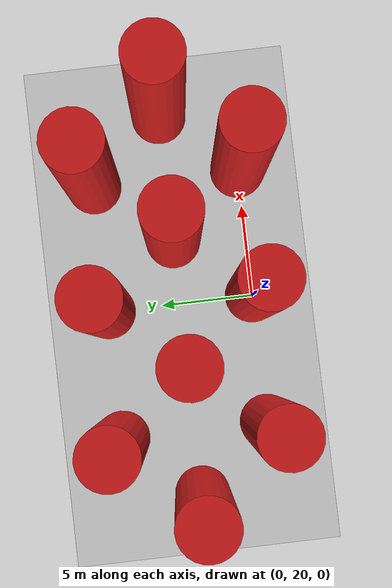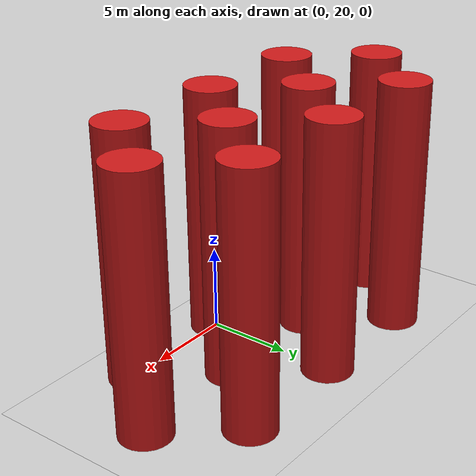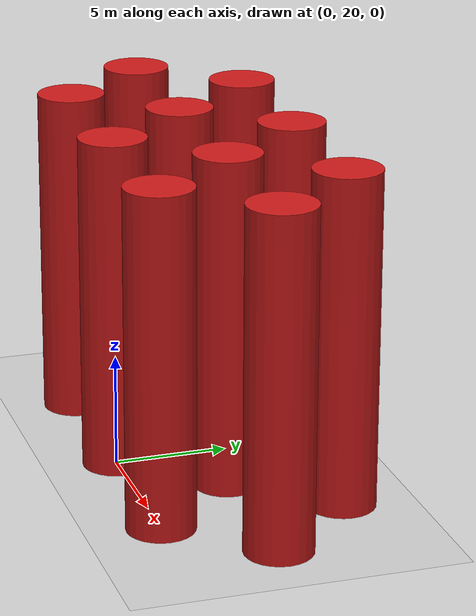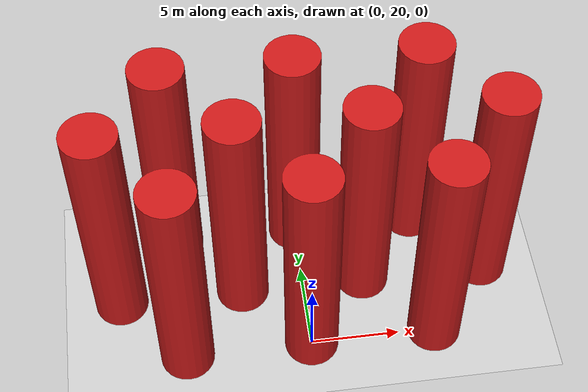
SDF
<sdf version='1.10'>
  <world name='wind_obstacles_world'>
    <physics type='ode'>
      <max_step_size>0.004</max_step_size>
      <real_time_factor>1</real_time_factor>
      <real_time_update_rate>250</real_time_update_rate>
    </physics>

    <plugin name='gz::sim::systems::Physics' filename='gz-sim-physics-system'/>
    <plugin name='gz::sim::systems::UserCommands' filename='gz-sim-user-commands-system'/>
    <plugin name='gz::sim::systems::SceneBroadcaster' filename='gz-sim-scene-broadcaster-system'/>
    <plugin name='gz::sim::systems::Contact' filename='gz-sim-contact-system'/>

    <plugin name='gz::sim::systems::Imu' filename='gz-sim-imu-system'/>
    <plugin name='gz::sim::systems::Sensors' filename='gz-sim-sensors-system'>
      <render_engine>ogre2</render_engine>
    </plugin>
    <plugin name='gz::sim::systems::NavSat' filename='gz-sim-navsat-system'/>
    <plugin name='gz::sim::systems::AirPressure' filename='gz-sim-air-pressure-system'/>
    <plugin name='gz::sim::systems::Magnetometer' filename='gz-sim-magnetometer-system'/>

    <plugin filename="gz-sim-wind-effects-system" name="gz::sim::systems::WindEffects">
      <force_approximation_scaling_factor>1</force_approximation_scaling_factor>
      <horizontal>
        <magnitude>
          <time_for_rise>10</time_for_rise>
          <sin>
            <amplitude_percent>0.2</amplitude_percent>
            <period>5</period>
          </sin>
          <noise type="gaussian">
            <mean>5.0</mean>
            <stddev>1.0</stddev>
          </noise>
        </magnitude>
        <direction>
          <time_for_rise>30</time_for_rise>
          <noise type="gaussian">
            <mean>90</mean>
            <stddev>5.0</stddev>
          </noise>
        </direction>
      </horizontal>
      <vertical>
        <noise type="gaussian">
          <mean>0</mean>
          <stddev>0.1</stddev>
        </noise>
      </vertical>
    </plugin>

    <gravity>0 0 -9.8</gravity>
    <magnetic_field>6.0e-06 2.3e-05 -4.2e-05</magnetic_field>
    <atmosphere type='adiabatic'/>

    <wind>
      <linear_velocity>0 5.0 0</linear_velocity>
    </wind>

    <scene>
      <grid>false</grid>
      <ambient>0.4 0.4 0.4 1</ambient>
      <background>0.7 0.7 0.7 1</background>
      <shadows>true</shadows>
    </scene>

    <spherical_coordinates>
      <surface_model>EARTH_WGS84</surface_model>
      <world_frame_orientation>ENU</world_frame_orientation>
      <latitude_deg>47.397971057728974</latitude_deg>
      <longitude_deg>8.5461637398001464</longitude_deg>
      <elevation>0</elevation>
      <heading_deg>0</heading_deg>
    </spherical_coordinates>
    <model name='ground_plane'>
      <static>true</static>
      <link name='link'>
        <collision name='collision'>
          <geometry>
            <plane>
              <normal>0 0 1</normal>
              <size>1 1</size>
            </plane>
          </geometry>
          <surface>
            <friction>
              <ode/>
            </friction>
            <bounce/>
            <contact/>
          </surface>
        </collision>
        <visual name='visual'>
          <geometry>
            <plane>
              <normal>0 0 1</normal>
              <size>500 500</size>
            </plane>
          </geometry>
          <material>
            <ambient>0.800000012 0.800000012 0.800000012 1</ambient>
            <diffuse>0.800000012 0.800000012 0.800000012 1</diffuse>
            <specular>0.800000012 0.800000012 0.800000012 1</specular>
          </material>
        </visual>
        <pose>0 0 0 0 0 0</pose>
        <inertial>
          <pose>0 0 0 0 0 0</pose>
          <mass>1</mass>
          <inertia>
            <ixx>1</ixx>
            <ixy>0</ixy>
            <ixz>0</ixz>
            <iyy>1</iyy>
            <iyz>0</iyz>
            <izz>1</izz>
          </inertia>
        </inertial>
        <enable_wind>false</enable_wind>
      </link>
      <pose>0 0 0 0 0 0</pose>
      <self_collide>false</self_collide>
    </model>

    <model name='obstaculo_apf0.0'>
      <pose>0 20 7.5 0 0 0</pose>
      <static>true</static> <link name='cylinder_link'>
        <collision name='cylinder_collision'>
          <geometry>
            <cylinder>
              <radius>1.5</radius>
              <length>15</length>
            </cylinder>
          </geometry>
        </collision>
        <visual name='cylinder_visual'>
          <geometry>
            <cylinder>
              <radius>1.5</radius>
              <length>15</length>
            </cylinder>
          </geometry>
          <material>
            <ambient>0.8 0.1 0.1 1</ambient> <diffuse>0.8 0.1 0.1 1</diffuse>
            <specular>0.5 0.5 0.5 1</specular>
          </material>
        </visual>
      </link>
    </model>

    <model name='obstaculo_apf0.1'>
      <pose>7 20 7.5 0 0 0</pose>
      <static>true</static> <link name='cylinder_link'>
        <collision name='cylinder_collision'>
          <geometry>
            <cylinder>
              <radius>1.5</radius>
              <length>15</length>
            </cylinder>
          </geometry>
        </collision>
        <visual name='cylinder_visual'>
          <geometry>
            <cylinder>
              <radius>1.5</radius>
              <length>15</length>
            </cylinder>
          </geometry>
          <material>
            <ambient>0.8 0.1 0.1 1</ambient> <diffuse>0.8 0.1 0.1 1</diffuse>
            <specular>0.5 0.5 0.5 1</specular>
          </material>
        </visual>
      </link>
    </model>

    <model name='obstaculo_apf0.2'>
      <pose>-7 20 7.5 0 0 0</pose>
      <static>true</static> <link name='cylinder_link'>
        <collision name='cylinder_collision'>
          <geometry>
            <cylinder>
              <radius>1.5</radius>
              <length>15</length>
            </cylinder>
          </geometry>
        </collision>
        <visual name='cylinder_visual'>
          <geometry>
            <cylinder>
              <radius>1.5</radius>
              <length>15</length>
            </cylinder>
          </geometry>
          <material>
            <ambient>0.8 0.1 0.1 1</ambient> <diffuse>0.8 0.1 0.1 1</diffuse>
            <specular>0.5 0.5 0.5 1</specular>
          </material>
        </visual>
      </link>
    </model>

    <model name='obstaculo_apf1.0'>
      <pose>3.5 24 7.5 0 0 0</pose>
      <static>true</static> <link name='cylinder_link'>
        <collision name='cylinder_collision'>
          <geometry>
            <cylinder>
              <radius>1.5</radius>
              <length>15</length>
            </cylinder>
          </geometry>
        </collision>
        <visual name='cylinder_visual'>
          <geometry>
            <cylinder>
              <radius>1.5</radius>
              <length>15</length>
            </cylinder>
          </geometry>
          <material>
            <ambient>0.8 0.1 0.1 1</ambient> <diffuse>0.8 0.1 0.1 1</diffuse>
            <specular>0.5 0.5 0.5 1</specular>
          </material>
        </visual>
      </link>
    </model>

    <model name='obstaculo_apf1.1'>
      <pose>-3.5 24 7.5 0 0 0</pose>
      <static>true</static> <link name='cylinder_link'>
        <collision name='cylinder_collision'>
          <geometry>
            <cylinder>
              <radius>1.5</radius>
              <length>15</length>
            </cylinder>
          </geometry>
        </collision>
        <visual name='cylinder_visual'>
          <geometry>
            <cylinder>
              <radius>1.5</radius>
              <length>15</length>
            </cylinder>
          </geometry>
          <material>
            <ambient>0.8 0.1 0.1 1</ambient> <diffuse>0.8 0.1 0.1 1</diffuse>
            <specular>0.5 0.5 0.5 1</specular>
          </material>
        </visual>
      </link>
    </model>

    <model name='obstaculo_apf1.2'>
      <pose>10.5 24 7.5 0 0 0</pose>
      <static>true</static> <link name='cylinder_link'>
        <collision name='cylinder_collision'>
          <geometry>
            <cylinder>
              <radius>1.5</radius>
              <length>15</length>
            </cylinder>
          </geometry>
        </collision>
        <visual name='cylinder_visual'>
          <geometry>
            <cylinder>
              <radius>1.5</radius>
              <length>15</length>
            </cylinder>
          </geometry>
          <material>
            <ambient>0.8 0.1 0.1 1</ambient> <diffuse>0.8 0.1 0.1 1</diffuse>
            <specular>0.5 0.5 0.5 1</specular>
          </material>
        </visual>
      </link>
    </model>

    <model name='obstaculo_apf1.3'>
      <pose>-10.5 24 7.5 0 0 0</pose>
      <static>true</static> <link name='cylinder_link'>
        <collision name='cylinder_collision'>
          <geometry>
            <cylinder>
              <radius>1.5</radius>
              <length>15</length>
            </cylinder>
          </geometry>
        </collision>
        <visual name='cylinder_visual'>
          <geometry>
            <cylinder>
              <radius>1.5</radius>
              <length>15</length>
            </cylinder>
          </geometry>
          <material>
            <ambient>0.8 0.1 0.1 1</ambient> <diffuse>0.8 0.1 0.1 1</diffuse>
            <specular>0.5 0.5 0.5 1</specular>
          </material>
        </visual>
      </link>
    </model>

    <model name='obstaculo_apf2.0'>
      <pose>0 28 7.5 0 0 0</pose>
      <static>true</static> <link name='cylinder_link'>
        <collision name='cylinder_collision'>
          <geometry>
            <cylinder>
              <radius>1.5</radius>
              <length>15</length>
            </cylinder>
          </geometry>
        </collision>
        <visual name='cylinder_visual'>
          <geometry>
            <cylinder>
              <radius>1.5</radius>
              <length>15</length>
            </cylinder>
          </geometry>
          <material>
            <ambient>0.8 0.1 0.1 1</ambient> <diffuse>0.8 0.1 0.1 1</diffuse>
            <specular>0.5 0.5 0.5 1</specular>
          </material>
        </visual>
      </link>
    </model>

    <model name='obstaculo_apf2.1'>
      <pose>7 28 7.5 0 0 0</pose>
      <static>true</static> <link name='cylinder_link'>
        <collision name='cylinder_collision'>
          <geometry>
            <cylinder>
              <radius>1.5</radius>
              <length>15</length>
            </cylinder>
          </geometry>
        </collision>
        <visual name='cylinder_visual'>
          <geometry>
            <cylinder>
              <radius>1.5</radius>
              <length>15</length>
            </cylinder>
          </geometry>
          <material>
            <ambient>0.8 0.1 0.1 1</ambient> <diffuse>0.8 0.1 0.1 1</diffuse>
            <specular>0.5 0.5 0.5 1</specular>
          </material>
        </visual>
      </link>
    </model>

    <model name='obstaculo_apf2.2'>
      <pose>-7 28 7.5 0 0 0</pose>
      <static>true</static> <link name='cylinder_link'>
        <collision name='cylinder_collision'>
          <geometry>
            <cylinder>
              <radius>1.5</radius>
              <length>15</length>
            </cylinder>
          </geometry>
        </collision>
        <visual name='cylinder_visual'>
          <geometry>
            <cylinder>
              <radius>1.5</radius>
              <length>15</length>
            </cylinder>
          </geometry>
          <material>
            <ambient>0.8 0.1 0.1 1</ambient> <diffuse>0.8 0.1 0.1 1</diffuse>
            <specular>0.5 0.5 0.5 1</specular>
          </material>
        </visual>
      </link>
    </model>

    <light name='sunUTC' type='directional'>
      <pose>0 0 500 0 0 0</pose>
      <cast_shadows>true</cast_shadows>
      <intensity>1</intensity>
      <direction>0.001 0.625 -0.78000000000000003</direction>
      <diffuse>0.903999984 0.903999984 0.903999984 1</diffuse>
      <specular>0.270999998 0.270999998 0.270999998 1</specular>
      <attenuation>
        <range>2000</range>
        <linear>0</linear>
        <constant>1</constant>
        <quadratic>0</quadratic>
      </attenuation>
      <spot>
        <inner_angle>0</inner_angle>
        <outer_angle>0</outer_angle>
        <falloff>0</falloff>
      </spot>
    </light>
  </world>
</sdf>
